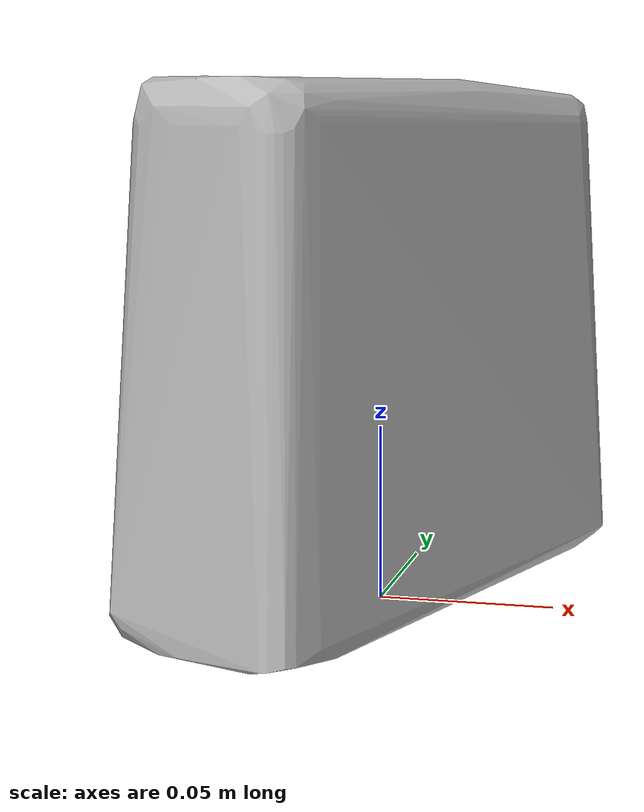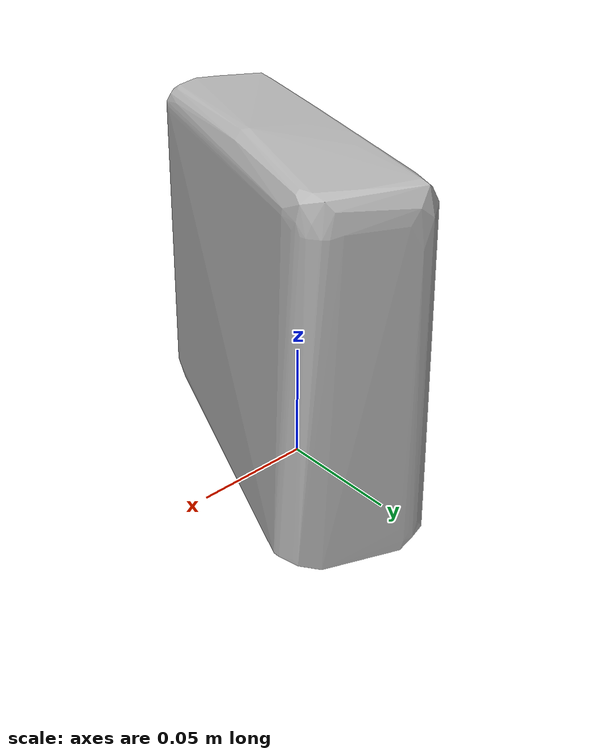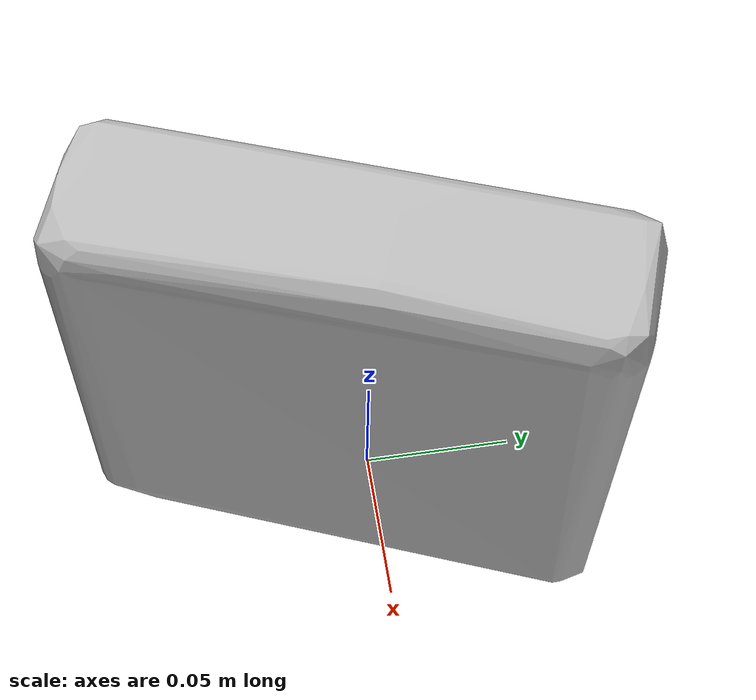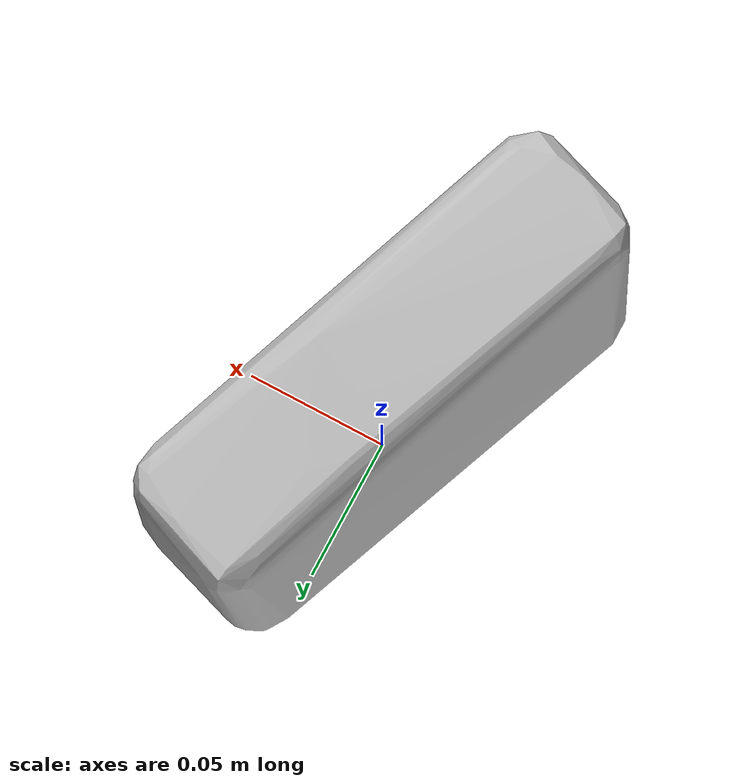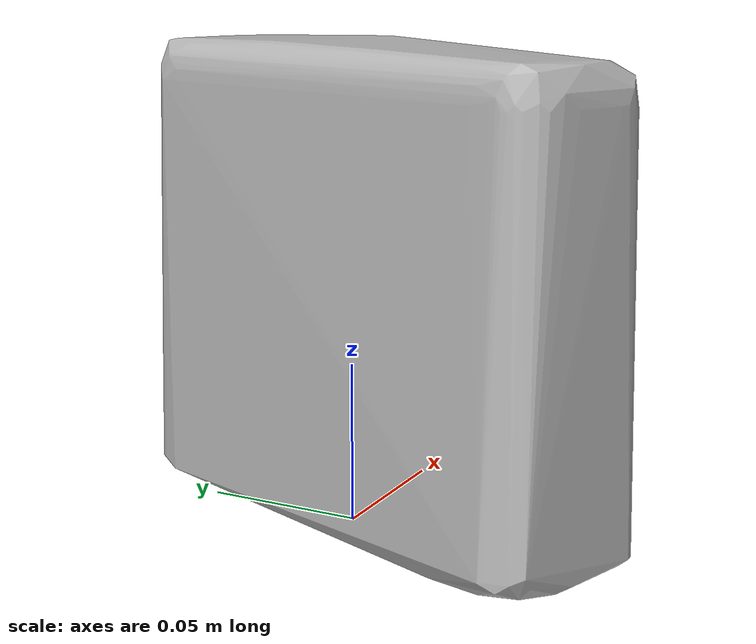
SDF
<?xml version='1.0'?>
<sdf version="1.4">
  <model name="nature_valley_crunchy_oats_n_honey">
    <static>false</static>
    <link name="link">
      <inertial>
        <pose>0.0030477248477339828 -0.006896382545648017 0.07375586749672178 1.574475394150135 -0.010509597999814246 2.766118140255856</pose>
        <mass>0.12776431081454825</mass>
        <inertia>
          <ixx>0.0004947877011713555</ixx>
          <ixy>6.064450550638957e-22</ixy>
          <ixz>1.3234437585972534e-20</ixz>
          <iyy>0.000319540974169887</iyy>
          <iyz>1.3267482650522759e-20</iyz>
          <izz>0.0002389873395622526</izz>
        </inertia>
      </inertial>
      <collision name="collision">
        <geometry>
          <mesh>
            <!-- Use a downsampled mesh for collisions -->
            <uri>model:///nature_valley_crunchy_oats_n_honey/nature_valley_crunchy_oats_n_honey_250_collision.obj</uri>
	        </mesh>
        </geometry>
        <surface>
      </surface>
      </collision>
      <visual name="visual">
        <geometry>
          <mesh>
            <uri>model:///nature_valley_crunchy_oats_n_honey/optimized_tsdf_texture_mapped_mesh.obj</uri>
	        </mesh>
        </geometry>
        <material>
          <script>
            <uri>model:///nature_valley_crunchy_oats_n_honey/nature_valley_crunchy_oats_n_honey.material</uri>
            <name>nature_valley_crunchy_oats_n_honey</name>
          </script>
        </material>
      </visual>
    </link>
  </model>
</sdf>
